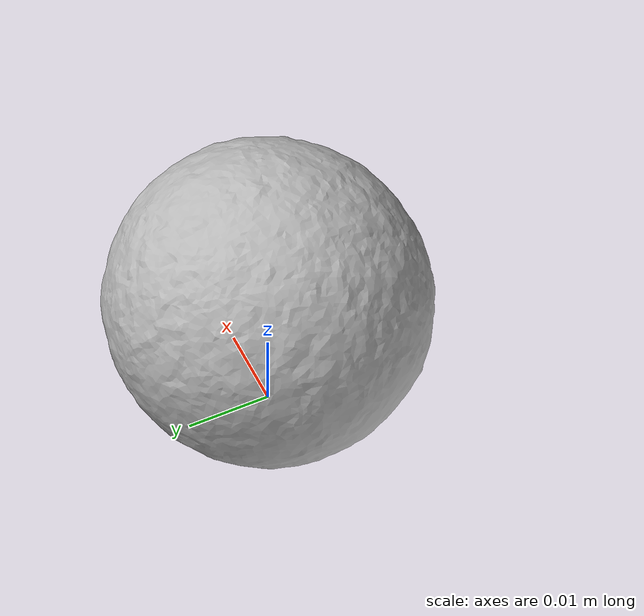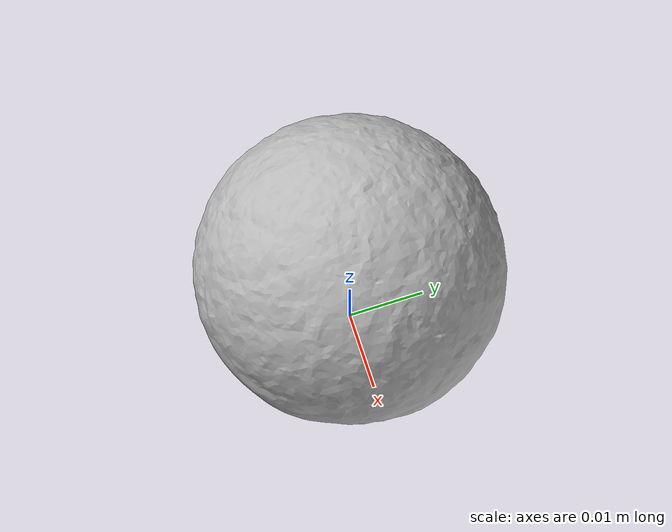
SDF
<?xml version="1.0" ?>
<sdf version='1.8'>
  <model name='ycb_063-b_marbles'>
    <link name='body'>
      <inertial>
        <mass>0.029554908529</mass>
        <pose>-1.89042596e-05 2.26685783e-05 0.0170771398 0 0 0</pose>
        <inertia>
          <ixx>3.53527846539e-06</ixx>
          <ixy>-8.34172410313e-09</ixy>
          <ixz>-4.99416448909e-09</ixz>
          <iyy>3.55231958172e-06</iyy>
          <iyz>-9.70791131977e-09</iyz>
          <izz>3.59646658209e-06</izz>
        </inertia>
      </inertial>
      <visual name='ycb_063-b_marbles_visual'>
        <pose>0.009093 0.045135 0.000232 0 0 0</pose>
        <geometry>
          <mesh>
            <uri>model://ycb_063-b_marbles/meshes/textured.dae</uri>
          </mesh>
        </geometry>
      </visual>
      <collision name='ycb_063-b_marbles_collision'>
        <pose>0.009093 0.045135 0.000232 0 0 0</pose>
        <geometry>
          <mesh>
            <uri>model://ycb_063-b_marbles/meshes/nontextured.stl</uri>
          </mesh>
        </geometry>
        <max_contacts>10</max_contacts>
        <surface>
          <contact>
            <ode>
              <kp>1e15</kp>
              <kd>1e13</kd>
            </ode>
          </contact>
        </surface>
      </collision>
    </link>
  </model>
</sdf>
